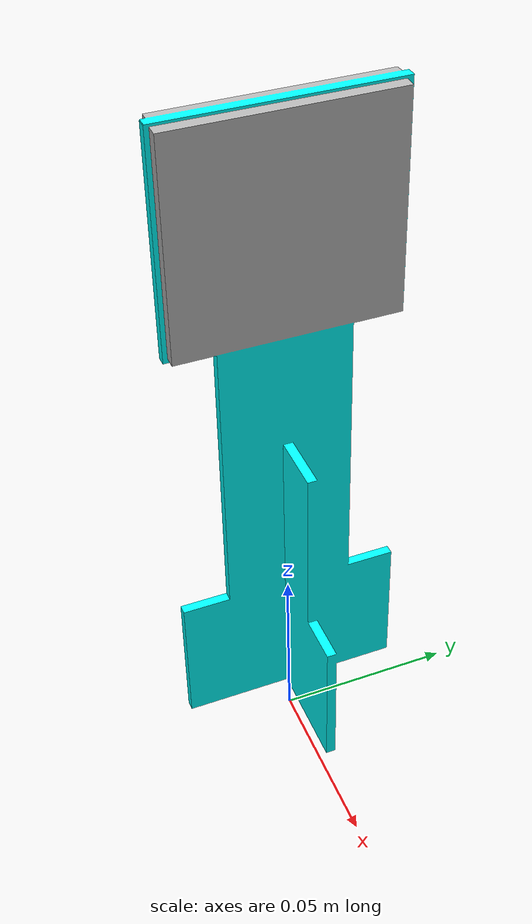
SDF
<?xml version='1.0'?>
<sdf version='1.6'>
  <model name='creeper_10_amarelo'>
    <link name='link'>
      <pose frame=''>0 -0 0.115 0 -0 0</pose>
      <inertial>
        <mass>0.00004</mass>
        <inertia>
          <ixx>2.01e-06</ixx>
          <ixy>0</ixy>
          <ixz>0</ixz>
          <iyy>2.01e-06</iyy>
          <iyz>0</iyz>
          <izz>5.9e-07</izz>
        </inertia>
        <pose frame=''>0 0 0 0 -0 0</pose>
      </inertial>
      <self_collide>0</self_collide>
      <enable_wind>0</enable_wind>
      <kinematic>0</kinematic>
      <gravity>1</gravity>
      <visual name='visual'>
        <pose frame=''>0 0 -0.15 0 -0 0</pose>
        <geometry>
          <mesh>
            <uri>model://reuniao/creepers/creeper_10_amarelo/materials/textures/creeper.dae</uri>
            <scale>1 1 1</scale>
          </mesh>
        </geometry>
        <transparency>0</transparency>
        <cast_shadows>1</cast_shadows>
      </visual>
      <collision name='collision'>
        <laser_retro>0</laser_retro>
        <max_contacts>10</max_contacts>
        <pose frame=''>0 0 0 0 -0 0</pose>
        <geometry>
          <box>
            <size>0.015 0.035 0.2</size>
          </box>
        </geometry>
        <surface>
          <friction>
            <ode>
              <mu>10</mu>
              <mu2>10</mu2>
              <fdir1>0 0 0</fdir1>
              <slip1>0</slip1>
              <slip2>0</slip2>
            </ode>
            <torsional>
              <coefficient>1</coefficient>
              <patch_radius>0</patch_radius>
              <surface_radius>0</surface_radius>
              <use_patch_radius>1</use_patch_radius>
              <ode>
                <slip>0</slip>
              </ode>
            </torsional>
          </friction>
          <bounce>
            <restitution_coefficient>0</restitution_coefficient>
            <threshold>1e+06</threshold>
          </bounce>
          <contact>
            <collide_without_contact>0</collide_without_contact>
            <collide_without_contact_bitmask>1</collide_without_contact_bitmask>
            <collide_bitmask>1</collide_bitmask>
            <ode>
              <soft_cfm>0</soft_cfm>
              <soft_erp>0.2</soft_erp>
              <kp>1e+13</kp>
              <kd>1</kd>
              <max_vel>0.01</max_vel>
              <min_depth>0</min_depth>
            </ode>
            <bullet>
              <split_impulse>1</split_impulse>
              <split_impulse_penetration_threshold>-0.01</split_impulse_penetration_threshold>
              <soft_cfm>0</soft_cfm>
              <soft_erp>0.2</soft_erp>
              <kp>1e+13</kp>
              <kd>1</kd>
            </bullet>
          </contact>
        </surface>
      </collision>
    </link>
    <static>0</static>
    <allow_auto_disable>1</allow_auto_disable>
  </model>
</sdf>
